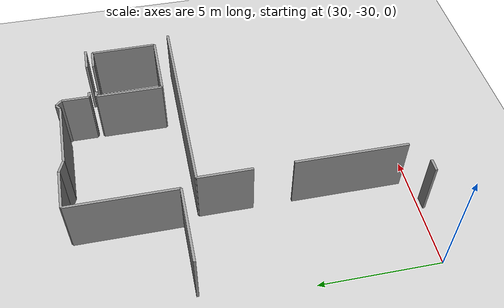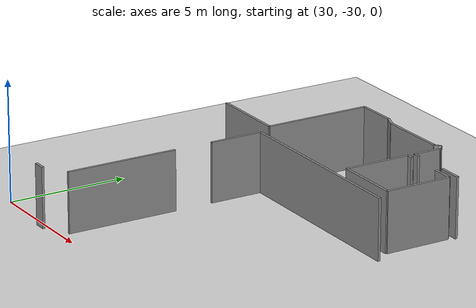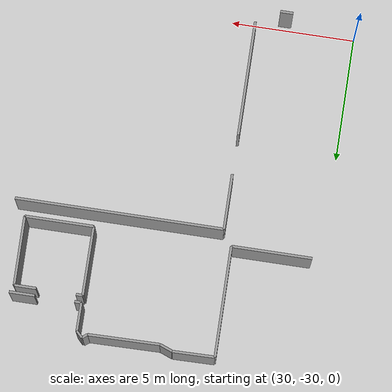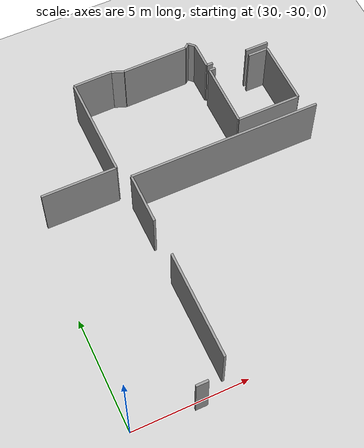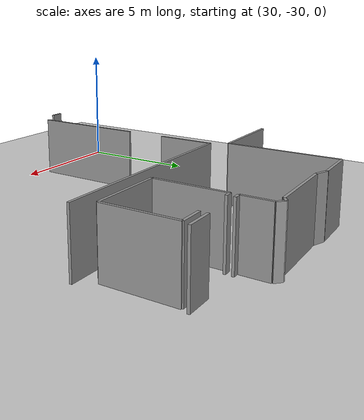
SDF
<sdf version="1.6">
 <world name="default">
  <model name="ground_plane">
   <static>1</static>
   <link name="link">
    <collision name="collision">
     <geometry><plane><normal>0 0 1</normal><size>100 100</size></plane></geometry>
     <surface><friction><ode><mu>100</mu><mu2>50</mu2></ode></friction></surface>
    </collision>
    <visual name="visual">
     <cast_shadows>0</cast_shadows>
     <geometry><plane><normal>0 0 1</normal><size>100 100</size></plane></geometry>
     <material>
      <script><uri>file://media/materials/scripts/gazebo.material</uri><name>Gazebo/Grey</name></script>
     </material>
    </visual>
   </link>
  </model>
  <model name="0510032260_A_40_1_102">
   <static>1</static>
   <link name="Wall_466">
    <collision name="Wall_466_Collision">
     <geometry><box><size>0.518730525394 0.1 2.5</size></box></geometry>
     <pose>0.259365262697 0 1.25 0 0 0</pose>
    </collision>
    <visual name="Wall_466_Visual">
     <pose>0.259365262697 0 1.25 0 0 0</pose>
     <geometry><box><size>0.518730525394 0.1 2.5</size></box></geometry>
     <material>
      <script><uri>file://media/materials/scripts/gazebo.material</uri><name>Gazebo/Grey</name></script>
      <ambient>1 1 1 1</ambient>
     </material>
    </visual>
    <pose>83.4202961092 -60.9949421553 0 0 0 3.14159265359</pose>
   </link>
   <link name="Wall_483">
    <collision name="Wall_483_Collision">
     <geometry><box><size>4.65613636508 0.1 2.5</size></box></geometry>
     <pose>2.32806818254 0 1.25 0 0 0</pose>
    </collision>
    <visual name="Wall_483_Visual">
     <pose>2.32806818254 0 1.25 0 0 0</pose>
     <geometry><box><size>4.65613636508 0.1 2.5</size></box></geometry>
     <material>
      <script><uri>file://media/materials/scripts/gazebo.material</uri><name>Gazebo/Grey</name></script>
      <ambient>1 1 1 1</ambient>
     </material>
    </visual>
    <pose>84.3534272134 -60.4276004747 0 0 0 1.57079632679</pose>
   </link>
   <link name="Wall_484">
    <collision name="Wall_484_Collision">
     <geometry><box><size>2.23319393059 0.1 2.5</size></box></geometry>
     <pose>1.11659696529 0 1.25 0 0 0</pose>
    </collision>
    <visual name="Wall_484_Visual">
     <pose>1.11659696529 0 1.25 0 0 0</pose>
     <geometry><box><size>2.23319393059 0.1 2.5</size></box></geometry>
     <material>
      <script><uri>file://media/materials/scripts/gazebo.material</uri><name>Gazebo/Grey</name></script>
      <ambient>1 1 1 1</ambient>
     </material>
    </visual>
    <pose>84.3534272134 -54.1658998458 0 0 0 1.57079632679</pose>
   </link>
   <link name="Wall_485">
    <collision name="Wall_485_Collision">
     <geometry><box><size>8.36353021063 0.1 2.5</size></box></geometry>
     <pose>4.18176510531 0 1.25 0 0 0</pose>
    </collision>
    <visual name="Wall_485_Visual">
     <pose>4.18176510531 0 1.25 0 0 0</pose>
     <geometry><box><size>8.36353021063 0.1 2.5</size></box></geometry>
     <material>
      <script><uri>file://media/materials/scripts/gazebo.material</uri><name>Gazebo/Grey</name></script>
      <ambient>1 1 1 1</ambient>
     </material>
    </visual>
    <pose>84.3534272134 -51.9327059152 0 0 0 0.0</pose>
   </link>
   <link name="Wall_489">
    <collision name="Wall_489_Collision">
     <geometry><box><size>3.22813608585 0.1 2.5</size></box></geometry>
     <pose>1.61406804293 0 1.25 0 0 0</pose>
    </collision>
    <visual name="Wall_489_Visual">
     <pose>1.61406804293 0 1.25 0 0 0</pose>
     <geometry><box><size>3.22813608585 0.1 2.5</size></box></geometry>
     <material>
      <script><uri>file://media/materials/scripts/gazebo.material</uri><name>Gazebo/Grey</name></script>
      <ambient>1 1 1 1</ambient>
     </material>
    </visual>
    <pose>83.9665687251 -51.3021570407 0 0 0 3.14159265359</pose>
   </link>
   <link name="Wall_503">
    <collision name="Wall_503_Collision">
     <geometry><box><size>1.02045349258 0.1 2.5</size></box></geometry>
     <pose>0.510226746289 0 1.25 0 0 0</pose>
    </collision>
    <visual name="Wall_503_Visual">
     <pose>0.510226746289 0 1.25 0 0 0</pose>
     <geometry><box><size>1.02045349258 0.1 2.5</size></box></geometry>
     <material>
      <script><uri>file://media/materials/scripts/gazebo.material</uri><name>Gazebo/Grey</name></script>
      <ambient>1 1 1 1</ambient>
     </material>
    </visual>
    <pose>92.3490103251 -48.2050045375 0 0 0 3.14159265359</pose>
   </link>
   <link name="Wall_504">
    <collision name="Wall_504_Collision">
     <geometry><box><size>0.271867087202 0.1 2.5</size></box></geometry>
     <pose>0.135933543601 0 1.25 0 0 0</pose>
    </collision>
    <visual name="Wall_504_Visual">
     <pose>0.135933543601 0 1.25 0 0 0</pose>
     <geometry><box><size>0.271867087202 0.1 2.5</size></box></geometry>
     <material>
      <script><uri>file://media/materials/scripts/gazebo.material</uri><name>Gazebo/Grey</name></script>
      <ambient>1 1 1 1</ambient>
     </material>
    </visual>
    <pose>89.7402539711 -48.2050045375 0 0 0 3.14159265359</pose>
   </link>
   <link name="Wall_505">
    <collision name="Wall_505_Collision">
     <geometry><box><size>1.13582565984 0.1 2.5</size></box></geometry>
     <pose>0.567912829918 0 1.25 0 0 0</pose>
    </collision>
    <visual name="Wall_505_Visual">
     <pose>0.567912829918 0 1.25 0 0 0</pose>
     <geometry><box><size>1.13582565984 0.1 2.5</size></box></geometry>
     <material>
      <script><uri>file://media/materials/scripts/gazebo.material</uri><name>Gazebo/Grey</name></script>
      <ambient>1 1 1 1</ambient>
     </material>
    </visual>
    <pose>89.4683868839 -48.2050045375 0 0 0 1.57079632679</pose>
   </link>
   <link name="Wall_506">
    <collision name="Wall_506_Collision">
     <geometry><box><size>0.331169346282 0.1 2.5</size></box></geometry>
     <pose>0.165584673141 0 1.25 0 0 0</pose>
    </collision>
    <visual name="Wall_506_Visual">
     <pose>0.165584673141 0 1.25 0 0 0</pose>
     <geometry><box><size>0.331169346282 0.1 2.5</size></box></geometry>
     <material>
      <script><uri>file://media/materials/scripts/gazebo.material</uri><name>Gazebo/Grey</name></script>
      <ambient>1 1 1 1</ambient>
     </material>
    </visual>
    <pose>89.4683868839 -47.0691788776 0 0 0 2.35890451066</pose>
   </link>
   <link name="Wall_507">
    <collision name="Wall_507_Collision">
     <geometry><box><size>0.256254697439 0.1 2.5</size></box></geometry>
     <pose>0.12812734872 0 1.25 0 0 0</pose>
    </collision>
    <visual name="Wall_507_Visual">
     <pose>0.12812734872 0 1.25 0 0 0</pose>
     <geometry><box><size>0.256254697439 0.1 2.5</size></box></geometry>
     <material>
      <script><uri>file://media/materials/scripts/gazebo.material</uri><name>Gazebo/Grey</name></script>
      <ambient>1 1 1 1</ambient>
     </material>
    </visual>
    <pose>89.2335810429 -46.8356422574 0 0 0 -2.47837746383</pose>
   </link>
   <link name="Wall_508">
    <collision name="Wall_508_Collision">
     <geometry><box><size>2.87455715095 0.1 2.5</size></box></geometry>
     <pose>1.43727857547 0 1.25 0 0 0</pose>
    </collision>
    <visual name="Wall_508_Visual">
     <pose>1.43727857547 0 1.25 0 0 0</pose>
     <geometry><box><size>2.87455715095 0.1 2.5</size></box></geometry>
     <material>
      <script><uri>file://media/materials/scripts/gazebo.material</uri><name>Gazebo/Grey</name></script>
      <ambient>1 1 1 1</ambient>
     </material>
    </visual>
    <pose>89.0316480197 -46.9934063981 0 0 0 -3.12763966</pose>
   </link>
   <link name="Wall_509">
    <collision name="Wall_509_Collision">
     <geometry><box><size>0.542986778829 0.1 2.5</size></box></geometry>
     <pose>0.271493389414 0 1.25 0 0 0</pose>
    </collision>
    <visual name="Wall_509_Visual">
     <pose>0.271493389414 0 1.25 0 0 0</pose>
     <geometry><box><size>0.542986778829 0.1 2.5</size></box></geometry>
     <material>
      <script><uri>file://media/materials/scripts/gazebo.material</uri><name>Gazebo/Grey</name></script>
      <ambient>1 1 1 1</ambient>
     </material>
    </visual>
    <pose>86.1573706823 -47.0335137742 0 0 0 2.77185115126</pose>
   </link>
   <link name="Wall_510">
    <collision name="Wall_510_Collision">
     <geometry><box><size>1.69434037445 0.1 2.5</size></box></geometry>
     <pose>0.847170187225 0 1.25 0 0 0</pose>
    </collision>
    <visual name="Wall_510_Visual">
     <pose>0.847170187225 0 1.25 0 0 0</pose>
     <geometry><box><size>1.69434037445 0.1 2.5</size></box></geometry>
     <material>
      <script><uri>file://media/materials/scripts/gazebo.material</uri><name>Gazebo/Grey</name></script>
      <ambient>1 1 1 1</ambient>
     </material>
    </visual>
    <pose>85.6510785203 -46.8372922444 0 0 0 -3.12683495968</pose>
   </link>
   <link name="Wall_511">
    <collision name="Wall_511_Collision">
     <geometry><box><size>4.43987162581 0.1 2.5</size></box></geometry>
     <pose>2.2199358129 0 1.25 0 0 0</pose>
    </collision>
    <visual name="Wall_511_Visual">
     <pose>2.2199358129 0 1.25 0 0 0</pose>
     <geometry><box><size>4.43987162581 0.1 2.5</size></box></geometry>
     <material>
      <script><uri>file://media/materials/scripts/gazebo.material</uri><name>Gazebo/Grey</name></script>
      <ambient>1 1 1 1</ambient>
     </material>
    </visual>
    <pose>83.9569226473 -46.8622958934 0 0 0 -1.56862372223</pose>
   </link>
   <link name="Wall_517">
    <collision name="Wall_517_Collision">
     <geometry><box><size>2.75636672865 0.1 2.5</size></box></geometry>
     <pose>1.37818336432 0 1.25 0 0 0</pose>
    </collision>
    <visual name="Wall_517_Visual">
     <pose>1.37818336432 0 1.25 0 0 0</pose>
     <geometry><box><size>2.75636672865 0.1 2.5</size></box></geometry>
     <material>
      <script><uri>file://media/materials/scripts/gazebo.material</uri><name>Gazebo/Grey</name></script>
      <ambient>1 1 1 1</ambient>
     </material>
    </visual>
    <pose>92.2166305996 -51.2715688203 0 0 0 3.14159265359</pose>
   </link>
   <link name="Wall_518">
    <collision name="Wall_518_Collision">
     <geometry><box><size>2.77692810499 0.1 2.5</size></box></geometry>
     <pose>1.38846405249 0 1.25 0 0 0</pose>
    </collision>
    <visual name="Wall_518_Visual">
     <pose>1.38846405249 0 1.25 0 0 0</pose>
     <geometry><box><size>2.77692810499 0.1 2.5</size></box></geometry>
     <material>
      <script><uri>file://media/materials/scripts/gazebo.material</uri><name>Gazebo/Grey</name></script>
      <ambient>1 1 1 1</ambient>
     </material>
    </visual>
    <pose>89.460263871 -51.2715688203 0 0 0 1.57079632679</pose>
   </link>
   <link name="Wall_519">
    <collision name="Wall_519_Collision">
     <geometry><box><size>0.268694035297 0.1 2.5</size></box></geometry>
     <pose>0.134347017649 0 1.25 0 0 0</pose>
    </collision>
    <visual name="Wall_519_Visual">
     <pose>0.134347017649 0 1.25 0 0 0</pose>
     <geometry><box><size>0.268694035297 0.1 2.5</size></box></geometry>
     <material>
      <script><uri>file://media/materials/scripts/gazebo.material</uri><name>Gazebo/Grey</name></script>
      <ambient>1 1 1 1</ambient>
     </material>
    </visual>
    <pose>89.460263871 -48.4946407153 0 0 0 0.0</pose>
   </link>
   <link name="Wall_520">
    <collision name="Wall_520_Collision">
     <geometry><box><size>0.87576232572 0.1 2.5</size></box></geometry>
     <pose>0.43788116286 0 1.25 0 0 0</pose>
    </collision>
    <visual name="Wall_520_Visual">
     <pose>0.43788116286 0 1.25 0 0 0</pose>
     <geometry><box><size>0.87576232572 0.1 2.5</size></box></geometry>
     <material>
      <script><uri>file://media/materials/scripts/gazebo.material</uri><name>Gazebo/Grey</name></script>
      <ambient>1 1 1 1</ambient>
     </material>
    </visual>
    <pose>91.317641534 -48.4946407153 0 0 0 0.0</pose>
   </link>
   <link name="Wall_521">
    <collision name="Wall_521_Collision">
     <geometry><box><size>2.77702523966 0.1 2.5</size></box></geometry>
     <pose>1.38851261983 0 1.25 0 0 0</pose>
    </collision>
    <visual name="Wall_521_Visual">
     <pose>1.38851261983 0 1.25 0 0 0</pose>
     <geometry><box><size>2.77702523966 0.1 2.5</size></box></geometry>
     <material>
      <script><uri>file://media/materials/scripts/gazebo.material</uri><name>Gazebo/Grey</name></script>
      <ambient>1 1 1 1</ambient>
     </material>
    </visual>
    <pose>92.1934038597 -48.4946407153 0 0 0 -1.562432337</pose>
   </link>
   <pose>-50.3 30.7834798226 0 0 0 0</pose>
  </model>
 </world>
</sdf>
